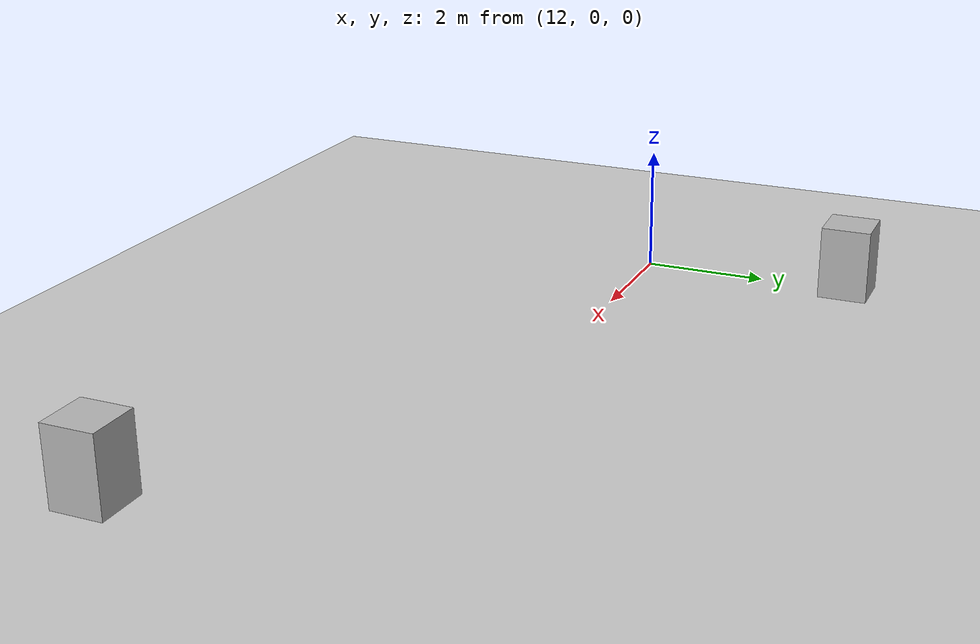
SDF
<?xml version="1.0"?>
<sdf version="1.6">
  <world name="v2-04g-r3-cruise-s5021">
    <gravity>0 0 -9.81</gravity>
    <physics name="v2_deterministic" type="ode">
      <max_step_size>0.002</max_step_size>
      <real_time_update_rate>500</real_time_update_rate>
    </physics>
    <include>
      <uri>model://sun</uri>
    </include>
    <include>
      <uri>model://ground_plane</uri>
    </include>
    <model name="cruise-left">
      <static>true</static>
      <pose>12.037359844 3.464111973 0.600000000 0 0 0.006224575</pose>
      <link name="link">
        <collision name="collision">
          <geometry>
            <box>
              <size>0.800000 0.800000 1.200000</size>
            </box>
          </geometry>
        </collision>
        <visual name="visual">
          <geometry>
            <box>
              <size>0.800000 0.800000 1.200000</size>
            </box>
          </geometry>
        </visual>
      </link>
    </model>
    <model name="cruise-right">
      <static>true</static>
      <pose>22.961088943 -3.508581446 0.600000000 0 0 0.003236043</pose>
      <link name="link">
        <collision name="collision">
          <geometry>
            <box>
              <size>0.800000 0.800000 1.200000</size>
            </box>
          </geometry>
        </collision>
        <visual name="visual">
          <geometry>
            <box>
              <size>0.800000 0.800000 1.200000</size>
            </box>
          </geometry>
        </visual>
      </link>
    </model>
  </world>
</sdf>
